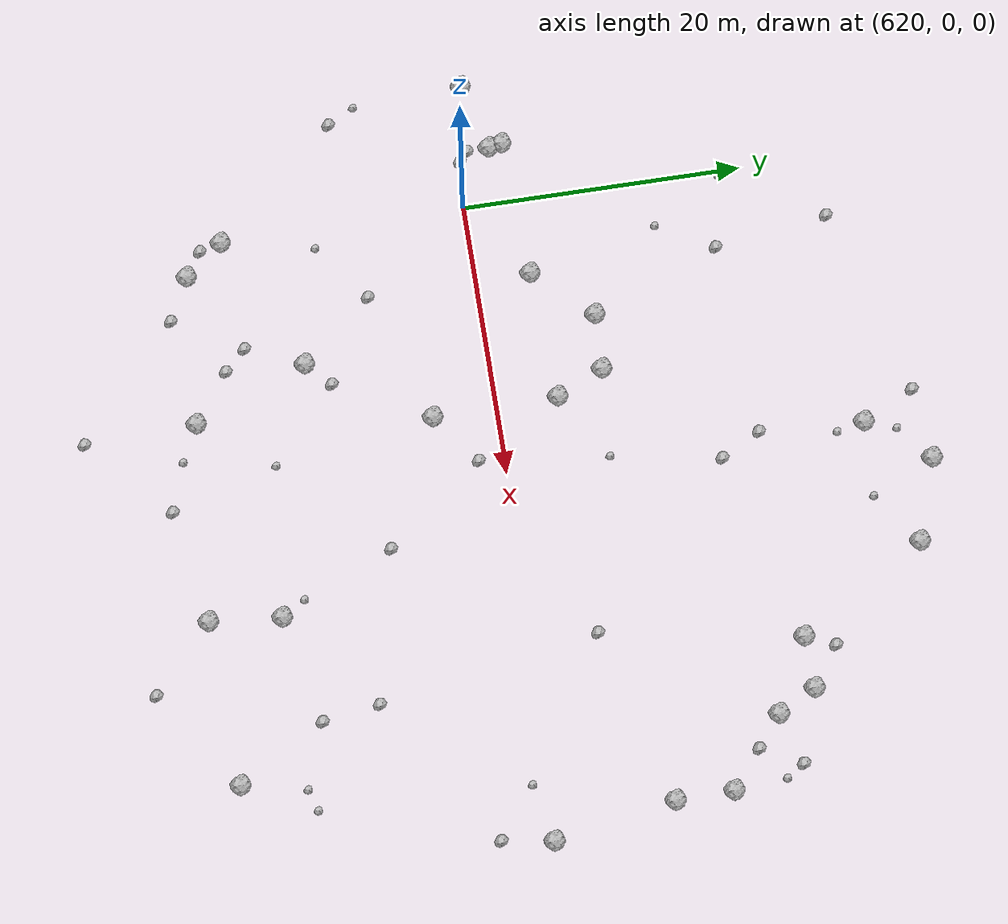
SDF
<sdf version="1.6">
 <world name="default">
  <include><uri>model://sun</uri></include>
  <model name="rock1_16_3">
   <include><uri>model://rock1</uri><pose>629.4825613621994 7.952853887376698 0.5 0 0 0</pose></include>
  </model>
  <model name="rock1_16_4">
   <include><uri>model://rock1</uri><pose>635.2424033286283 -4.525703073402159 0.5 0 0 0</pose></include>
  </model>
  <model name="rock1_16_5">
   <include><uri>model://rock1</uri><pose>647.9940689355788 -17.020890109742343 0.5 0 0 0</pose></include>
  </model>
  <model name="rock1_16_6">
   <include><uri>model://rock1</uri><pose>615.7112845216976 3.3907235253901504 0.5 0 0 0</pose></include>
  </model>
  <model name="rock1_16_7">
   <include><uri>model://rock1</uri><pose>664.943578217631 11.861993911440734 0.5 0 0 0</pose></include>
  </model>
  <model name="rock1_16_8">
   <include><uri>model://rock1</uri><pose>643.621847535745 29.599563795960748 0.5 0 0 0</pose></include>
  </model>
  <model name="rock1_16_9">
   <include><uri>model://rock1</uri><pose>647.5128636957043 -22.121793578620732 0.5 0 0 0</pose></include>
  </model>
  <model name="rock1_16_10">
   <include><uri>model://rock1</uri><pose>665.0014792384671 7.766915866482989 0.5 0 0 0</pose></include>
  </model>
  <model name="rock1_16_11">
   <include><uri>model://rock1</uri><pose>640.267442380185 25.352450711527297 0.5 0 0 0</pose></include>
  </model>
  <model name="rock1_16_12">
   <include><uri>model://rock1</uri><pose>654.9594336332118 18.488586657116002 0.5 0 0 0</pose></include>
  </model>
  <model name="rock1_16_13">
   <include><uri>model://rock1</uri><pose>666.5202120349181 -0.8688912676098397 0.5 0 0 0</pose></include>
  </model>
  <model name="rock1_16_14">
   <include><uri>model://rock1</uri><pose>659.343946197042 -21.52675171020516 0.5 0 0 0</pose></include>
  </model>
  <model name="rock1_16_15">
   <include><uri>model://rock1</uri><pose>635.100333621494 4.395493734355483 0.5 0 0 0</pose></include>
  </model>
  <model name="rock1_16_16">
   <include><uri>model://rock1</uri><pose>625.7292375431925 3.9035975031196557 0.5 0 0 0</pose></include>
  </model>
  <model name="rock1_16_17">
   <include><uri>model://rock1</uri><pose>633.1801923693687 -21.023485925018598 0.5 0 0 0</pose></include>
  </model>
  <model name="rock1_16_18">
   <include><uri>model://rock1</uri><pose>622.2431317760504 -20.2336342761807 0.5 0 0 0</pose></include>
  </model>
  <model name="rock1_16_19">
   <include><uri>model://rock1</uri><pose>629.9702559161876 -12.875509257460244 0.5 0 0 0</pose></include>
  </model>
  <model name="rock1_16_20">
   <include><uri>model://rock1</uri><pose>660.105478120945 15.819683858959351 0.5 0 0 0</pose></include>
  </model>
  <model name="rock1_16_21">
   <include><uri>model://rock1</uri><pose>615.8854825385772 2.436539422636862 0.5 0 0 0</pose></include>
  </model>
  <model name="rock1_16_22">
   <include><uri>model://rock1</uri><pose>610.9376694483861 1.1825545970363187 0.5 0 0 0</pose></include>
  </model>
  <model name="rock1_16_23">
   <include><uri>model://rock1</uri><pose>658.6818307932703 18.555599407770572 0.5 0 0 0</pose></include>
  </model>
  <model name="rock1_16_24">
   <include><uri>model://rock1</uri><pose>633.5579372256248 7.782373237015577 0.5 0 0 0</pose></include>
  </model>
  <model name="rock1_16_25">
   <include><uri>model://rock1</uri><pose>620.0721287596834 -17.507122819488615 0.5 0 0 0</pose></include>
  </model>
  <model name="rock1_16_26">
   <include><uri>model://rock1</uri><pose>649.4597612466524 27.66830492122257 0.5 0 0 0</pose></include>
  </model>
  <model name="rock2_16_0">
   <include><uri>model://rock2</uri><pose>655.8169550131971 20.586588468725118 0.3 0 0 0</pose></include>
  </model>
  <model name="rock2_16_1">
   <include><uri>model://rock2</uri><pose>638.8060686711038 -1.8030982997764191 0.3 0 0 0</pose></include>
  </model>
  <model name="rock2_16_2">
   <include><uri>model://rock2</uri><pose>663.7521381360306 16.926752205928224 0.3 0 0 0</pose></include>
  </model>
  <model name="rock2_16_3">
   <include><uri>model://rock2</uri><pose>625.6452748280733 -7.7241951152563075 0.3 0 0 0</pose></include>
  </model>
  <model name="rock2_16_4">
   <include><uri>model://rock2</uri><pose>665.8798875446961 -4.4621478540952815 0.3 0 0 0</pose></include>
  </model>
  <model name="rock2_16_5">
   <include><uri>model://rock2</uri><pose>644.2074331075235 -8.829070076400455 0.3 0 0 0</pose></include>
  </model>
  <model name="rock2_16_6">
   <include><uri>model://rock2</uri><pose>638.366022850306 29.139174505410466 0.3 0 0 0</pose></include>
  </model>
  <model name="rock2_16_7">
   <include><uri>model://rock2</uri><pose>631.6486415988835 -11.178810492748664 0.3 0 0 0</pose></include>
  </model>
  <model name="rock2_16_8">
   <include><uri>model://rock2</uri><pose>612.2935682120994 -8.622045120142385 0.3 0 0 0</pose></include>
  </model>
  <model name="rock2_16_9">
   <include><uri>model://rock2</uri><pose>639.7672030477194 17.962363826517176 0.3 0 0 0</pose></include>
  </model>
  <model name="rock2_16_10">
   <include><uri>model://rock2</uri><pose>625.751737613474 17.273851585458047 0.3 0 0 0</pose></include>
  </model>
  <model name="rock2_16_11">
   <include><uri>model://rock2</uri><pose>652.3952178541854 4.450550760599889 0.3 0 0 0</pose></include>
  </model>
  <model name="rock2_16_12">
   <include><uri>model://rock2</uri><pose>641.2850579315676 15.102918468076517 0.3 0 0 0</pose></include>
  </model>
  <model name="rock2_16_13">
   <include><uri>model://rock2</uri><pose>633.3728316593446 -28.975520786774357 0.3 0 0 0</pose></include>
  </model>
  <model name="rock2_16_14">
   <include><uri>model://rock2</uri><pose>615.8404036966358 0.8988330098013115 0.3 0 0 0</pose></include>
  </model>
  <model name="rock2_16_15">
   <include><uri>model://rock2</uri><pose>625.2612002331333 -21.775555096512967 0.3 0 0 0</pose></include>
  </model>
  <model name="rock2_16_16">
   <include><uri>model://rock2</uri><pose>620.2732858046791 18.51632913128065 0.3 0 0 0</pose></include>
  </model>
  <model name="rock2_16_17">
   <include><uri>model://rock2</uri><pose>628.0947097191837 -16.91192106456611 0.3 0 0 0</pose></include>
  </model>
  <model name="rock2_16_18">
   <include><uri>model://rock2</uri><pose>652.1222903686017 -26.387343428436992 0.3 0 0 0</pose></include>
  </model>
  <model name="rock2_16_19">
   <include><uri>model://rock2</uri><pose>655.1014476589787 -11.237503595848676 0.3 0 0 0</pose></include>
  </model>
  <model name="rock2_16_20">
   <include><uri>model://rock2</uri><pose>629.5853128090583 -18.436851018771367 0.3 0 0 0</pose></include>
  </model>
  <model name="rock2_16_21">
   <include><uri>model://rock2</uri><pose>624.6025514515434 25.44825189594706 0.3 0 0 0</pose></include>
  </model>
  <model name="rock2_16_22">
   <include><uri>model://rock2</uri><pose>662.2458826376017 14.077160026468754 0.3 0 0 0</pose></include>
  </model>
  <model name="rock2_16_23">
   <include><uri>model://rock2</uri><pose>616.5286073306238 0.2884742186688882 0.3 0 0 0</pose></include>
  </model>
  <model name="rock2_16_24">
   <include><uri>model://rock2</uri><pose>655.7072851339726 -15.320224650570605 0.3 0 0 0</pose></include>
  </model>
  <model name="rock2_16_25">
   <include><uri>model://rock2</uri><pose>639.2315498597242 -23.506657073821575 0.3 0 0 0</pose></include>
  </model>
  <model name="rock2_16_26">
   <include><uri>model://rock2</uri><pose>620.3931205434899 -19.035616776941524 0.3 0 0 0</pose></include>
  </model>
  <model name="rock3_16_0">
   <include><uri>model://rock3</uri><pose>611.2293714694061 -6.733353008307581 0.2 0 0 0</pose></include>
  </model>
  <model name="rock3_16_1">
   <include><uri>model://rock3</uri><pose>664.5880211692538 15.60355863119721 0.2 0 0 0</pose></include>
  </model>
  <model name="rock3_16_2">
   <include><uri>model://rock3</uri><pose>636.9726166367658 -15.941203129676483 0.2 0 0 0</pose></include>
  </model>
  <model name="rock3_16_3">
   <include><uri>model://rock3</uri><pose>646.8749658148496 -15.347907368659543 0.2 0 0 0</pose></include>
  </model>
  <model name="rock3_16_4">
   <include><uri>model://rock3</uri><pose>639.8901106834986 7.3163751438320475 0.2 0 0 0</pose></include>
  </model>
  <model name="rock3_16_5">
   <include><uri>model://rock3</uri><pose>640.9933556487788 27.567895776957542 0.2 0 0 0</pose></include>
  </model>
  <model name="rock3_16_6">
   <include><uri>model://rock3</uri><pose>660.2772889398666 -17.016584814275298 0.2 0 0 0</pose></include>
  </model>
  <model name="rock3_16_7">
   <include><uri>model://rock3</uri><pose>661.8406805226206 -16.53652051114904 0.2 0 0 0</pose></include>
  </model>
  <model name="rock3_16_8">
   <include><uri>model://rock3</uri><pose>662.3233148246774 -1.7592492779549112 0.2 0 0 0</pose></include>
  </model>
  <model name="rock3_16_9">
   <include><uri>model://rock3</uri><pose>621.4067979456436 -10.928231334585284 0.2 0 0 0</pose></include>
  </model>
  <model name="rock3_16_10">
   <include><uri>model://rock3</uri><pose>635.7184951321917 -22.337251601731367 0.2 0 0 0</pose></include>
  </model>
  <model name="rock3_16_11">
   <include><uri>model://rock3</uri><pose>645.6439456297038 25.073683303173716 0.2 0 0 0</pose></include>
  </model>
  <model name="rock3_16_12">
   <include><uri>model://rock3</uri><pose>640.6174783431536 23.37993966376827 0.2 0 0 0</pose></include>
  </model>
  <model name="rock3_16_13">
   <include><uri>model://rock3</uri><pose>623.4697888688681 13.22307570316957 0.2 0 0 0</pose></include>
  </model>
 </world>
</sdf>
